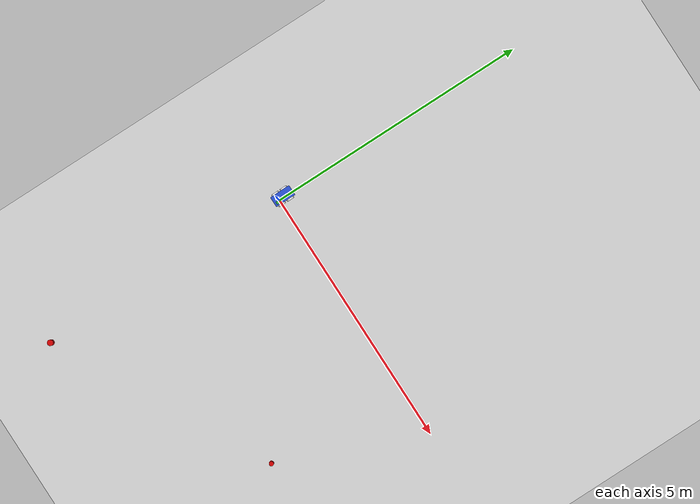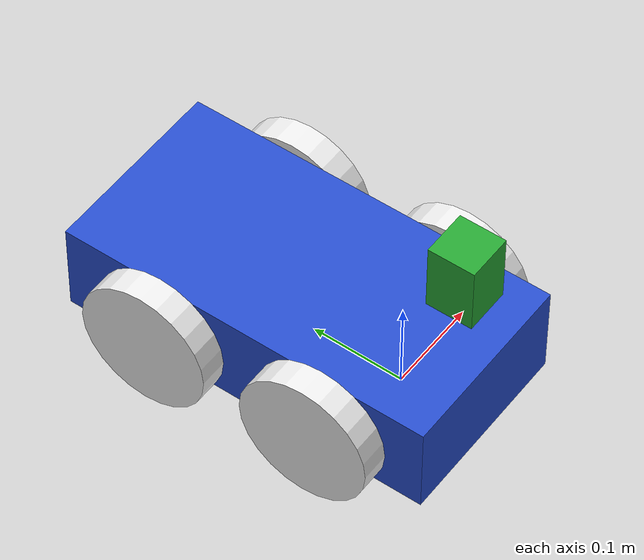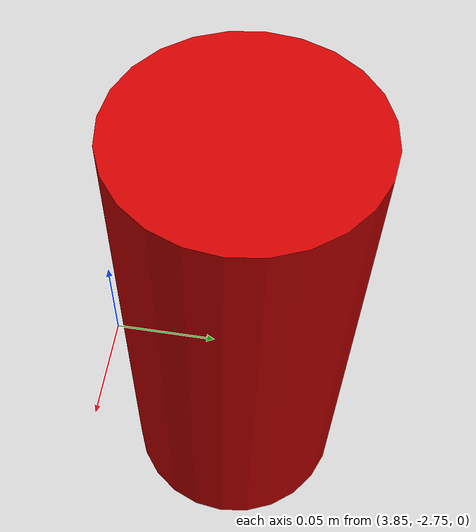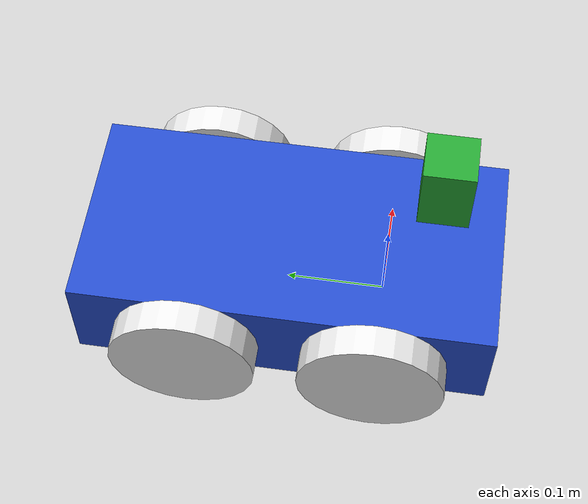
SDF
<sdf version="1.7">
 <world name="default">
  <light name="sun" type="directional">
   <pose>0 0 10 0 -0 0</pose>
   <diffuse>0.8 0.8 0.8 1</diffuse>
   <specular>0.2 0.2 0.2 1</specular>
   <attenuation>
    <range>1000</range>
    <constant>0.9</constant>
    <linear>0.01</linear>
    <quadratic>0.001</quadratic>
   </attenuation>
   <direction>-0.5 0.1 -0.9</direction>
   <spot><inner_angle>0</inner_angle><outer_angle>0</outer_angle><falloff>0</falloff></spot>
  </light>
  <model name="ground_plane">
   <static>1</static>
   <link name="link">
    <collision name="collision">
     <geometry><plane><normal>0 0 1</normal><size>100 100</size></plane></geometry>
     <surface>
      <contact><collide_bitmask>65535</collide_bitmask></contact>
      <friction><ode><mu>100</mu><mu2>50</mu2></ode></friction>
     </surface>
    </collision>
    <visual name="visual">
     <cast_shadows>0</cast_shadows>
     <geometry><plane><normal>0 0 1</normal><size>100 100</size></plane></geometry>
     <material>
      <script><uri>file://media/materials/scripts/gazebo.material</uri><name>Gazebo/Grey</name></script>
     </material>
    </visual>
   </link>
  </model>
  <gravity>0 0 -9.8</gravity>
  <magnetic_field>6e-06 2.3e-05 -4.2e-05</magnetic_field>
  <atmosphere type="adiabatic"/>
  <physics type="ode">
   <max_step_size>0.001</max_step_size>
   <real_time_factor>1</real_time_factor>
   <real_time_update_rate>1000</real_time_update_rate>
  </physics>
  <scene><ambient>0.4 0.4 0.4 1</ambient><background>0.7 0.7 0.7 1</background><shadows>1</shadows></scene>
  <spherical_coordinates>
   <surface_model>EARTH_WGS84</surface_model>
   <latitude_deg>0</latitude_deg>
   <longitude_deg>0</longitude_deg>
   <elevation>0</elevation>
   <heading_deg>0</heading_deg>
  </spherical_coordinates>
  <model name="robot">
   <link name="base_link">
    <inertial>
     <pose>0.000909 -0.002545 0.081545 0 -0 0</pose>
     <mass>22</mass>
     <inertia>
      <ixx>1.31653</ixx>
      <ixy>0.00274909</ixy>
      <ixz>-0.00166909</ixz>
      <iyy>1.36382</iyy>
      <iyz>0.00467345</iyz>
      <izz>1.54868</izz>
     </inertia>
    </inertial>
    <collision name="base_link_collision">
     <pose>0 0 0.08 0 -0 0</pose>
     <geometry><box><size>0.2 0.4 0.1</size></box></geometry>
    </collision>
    <collision name="base_link_fixed_joint_lump__camera_link_collision_1">
     <pose>0.05 -0.14 0.165 0 0 -1.57119</pose>
     <geometry><box><size>0.05 0.05 0.08</size></box></geometry>
    </collision>
    <visual name="base_link_visual">
     <pose>0 0 0.08 0 -0 0</pose>
     <geometry><box><size>0.2 0.4 0.1</size></box></geometry>
     <material>
      <script><name>Gazebo/Blue</name><uri>file://media/materials/scripts/gazebo.material</uri></script>
     </material>
    </visual>
    <visual name="base_link_fixed_joint_lump__camera_link_visual_1">
     <pose>0.05 -0.14 0.165 0 0 -1.57119</pose>
     <geometry><box><size>0.05 0.05 0.08</size></box></geometry>
     <material>
      <script><name>Gazebo/Green</name><uri>file://media/materials/scripts/gazebo.material</uri></script>
     </material>
    </visual>
    <sensor name="camera" type="depth">
     <always_on>1</always_on>
     <visualize>1</visualize>
     <camera>
      <horizontal_fov>1.047</horizontal_fov>
      <image><width>640</width><height>480</height><format>R8G8B8</format></image>
      <depth_camera><output>depths</output></depth_camera>
      <clip><near>0.1</near><far>100</far></clip>
     </camera>
     <plugin name="camera_controller" filename="libgazebo_ros_openni_kinect.so">
      <baseline>0.2</baseline>
      <alwaysOn>1</alwaysOn>
      <updateRate>10.0</updateRate>
      <cameraName>camera</cameraName>
      <frameName>camera_link</frameName>
      <imageTopicName>rgb/image_raw</imageTopicName>
      <depthImageTopicName>depth/image_raw</depthImageTopicName>
      <pointCloudTopicName>depth/points</pointCloudTopicName>
      <cameraInfoTopicName>rgb/camera_info</cameraInfoTopicName>
      <depthImageCameraInfoTopicName>depth/camera_info</depthImageCameraInfoTopicName>
      <pointCloudCutoff>0.4</pointCloudCutoff>
      <hackBaseline>0.07</hackBaseline>
      <distortionK1>0.0</distortionK1>
      <distortionK2>0.0</distortionK2>
      <distortionK3>0.0</distortionK3>
      <distortionT1>0.0</distortionT1>
      <distortionT2>0.0</distortionT2>
      <CxPrime>0.0</CxPrime>
      <Cx>0.0</Cx>
      <Cy>0.0</Cy>
      <focalLength>0.0</focalLength>
      <robotNamespace>/</robotNamespace>
     </plugin>
     <pose>0.05 -0.14 0.165 0 -0 -1.57119</pose>
    </sensor>
   </link>
   <joint name="joint_base_to_left_back_wheel" type="revolute">
    <pose relative_to="base_link">-0.115 -0.09 0.07 3.14159 1.57079 3.14159</pose>
    <parent>base_link</parent>
    <child>left_back_wheel</child>
    <axis>
     <xyz>0 0 1</xyz>
     <limit><lower>-1e+16</lower><upper>1e+16</upper></limit>
     <dynamics><spring_reference>0</spring_reference><spring_stiffness>0</spring_stiffness></dynamics>
    </axis>
   </joint>
   <link name="left_back_wheel">
    <pose relative_to="joint_base_to_left_back_wheel">0 0 0 0 -0 0</pose>
    <inertial>
     <mass>0.54</mass>
     <inertia>
      <ixx>0.000702</ixx>
      <ixy>0</ixy>
      <ixz>0</ixz>
      <iyy>0.000702</iyy>
      <iyz>0</iyz>
      <izz>0.001323</izz>
     </inertia>
    </inertial>
    <collision name="left_back_wheel_collision">
     <geometry><cylinder><length>0.03</length><radius>0.07</radius></cylinder></geometry>
    </collision>
    <visual name="left_back_wheel_visual">
     <geometry><cylinder><length>0.03</length><radius>0.07</radius></cylinder></geometry>
     <material>
      <script><name>Gazebo/White</name><uri>file://media/materials/scripts/gazebo.material</uri></script>
     </material>
    </visual>
   </link>
   <joint name="joint_base_to_left_front_wheel" type="revolute">
    <pose relative_to="base_link">-0.115 0.09 0.07 3.14159 1.57079 3.14159</pose>
    <parent>base_link</parent>
    <child>left_front_wheel</child>
    <axis>
     <xyz>0 0 1</xyz>
     <limit><lower>-1e+16</lower><upper>1e+16</upper></limit>
     <dynamics><spring_reference>0</spring_reference><spring_stiffness>0</spring_stiffness></dynamics>
    </axis>
   </joint>
   <link name="left_front_wheel">
    <pose relative_to="joint_base_to_left_front_wheel">0 0 0 0 -0 0</pose>
    <inertial>
     <mass>0.54</mass>
     <inertia>
      <ixx>0.000702</ixx>
      <ixy>0</ixy>
      <ixz>0</ixz>
      <iyy>0.000702</iyy>
      <iyz>0</iyz>
      <izz>0.001323</izz>
     </inertia>
    </inertial>
    <collision name="left_front_wheel_collision">
     <geometry><cylinder><length>0.03</length><radius>0.07</radius></cylinder></geometry>
    </collision>
    <visual name="left_front_wheel_visual">
     <geometry><cylinder><length>0.03</length><radius>0.07</radius></cylinder></geometry>
     <material>
      <script><name>Gazebo/White</name><uri>file://media/materials/scripts/gazebo.material</uri></script>
     </material>
    </visual>
   </link>
   <joint name="joint_base_to_right_back_wheel" type="revolute">
    <pose relative_to="base_link">0.115 -0.09 0.07 3.14159 1.57079 3.14159</pose>
    <parent>base_link</parent>
    <child>right_back_wheel</child>
    <axis>
     <xyz>0 0 1</xyz>
     <limit><lower>-1e+16</lower><upper>1e+16</upper></limit>
     <dynamics><spring_reference>0</spring_reference><spring_stiffness>0</spring_stiffness></dynamics>
    </axis>
   </joint>
   <link name="right_back_wheel">
    <pose relative_to="joint_base_to_right_back_wheel">0 0 0 0 -0 0</pose>
    <inertial>
     <mass>0.54</mass>
     <inertia>
      <ixx>0.000702</ixx>
      <ixy>0</ixy>
      <ixz>0</ixz>
      <iyy>0.000702</iyy>
      <iyz>0</iyz>
      <izz>0.001323</izz>
     </inertia>
    </inertial>
    <collision name="right_back_wheel_collision">
     <geometry><cylinder><length>0.03</length><radius>0.07</radius></cylinder></geometry>
    </collision>
    <visual name="right_back_wheel_visual">
     <geometry><cylinder><length>0.03</length><radius>0.07</radius></cylinder></geometry>
     <material>
      <script><name>Gazebo/White</name><uri>file://media/materials/scripts/gazebo.material</uri></script>
     </material>
    </visual>
   </link>
   <joint name="joint_base_to_right_front_wheel" type="revolute">
    <pose relative_to="base_link">0.115 0.09 0.07 3.14159 1.57079 3.14159</pose>
    <parent>base_link</parent>
    <child>right_front_wheel</child>
    <axis>
     <xyz>0 0 1</xyz>
     <limit><lower>-1e+16</lower><upper>1e+16</upper></limit>
     <dynamics><spring_reference>0</spring_reference><spring_stiffness>0</spring_stiffness></dynamics>
    </axis>
   </joint>
   <link name="right_front_wheel">
    <pose relative_to="joint_base_to_right_front_wheel">0 0 0 0 -0 0</pose>
    <inertial>
     <mass>0.54</mass>
     <inertia>
      <ixx>0.000702</ixx>
      <ixy>0</ixy>
      <ixz>0</ixz>
      <iyy>0.000702</iyy>
      <iyz>0</iyz>
      <izz>0.001323</izz>
     </inertia>
    </inertial>
    <collision name="right_front_wheel_collision">
     <geometry><cylinder><length>0.03</length><radius>0.07</radius></cylinder></geometry>
    </collision>
    <visual name="right_front_wheel_visual">
     <geometry><cylinder><length>0.03</length><radius>0.07</radius></cylinder></geometry>
     <material>
      <script><name>Gazebo/White</name><uri>file://media/materials/scripts/gazebo.material</uri></script>
     </material>
    </visual>
   </link>
   <plugin name="skid_steer_drive_controller" filename="libgazebo_ros_skid_steer_drive.so">
    <updateRate>100.0</updateRate>
    <leftFrontJoint>joint_base_to_left_front_wheel</leftFrontJoint>
    <rightFrontJoint>joint_base_to_right_front_wheel</rightFrontJoint>
    <leftRearJoint>joint_base_to_left_back_wheel</leftRearJoint>
    <rightRearJoint>joint_base_to_right_back_wheel</rightRearJoint>
    <wheelSeparation>0.2</wheelSeparation>
    <wheelDiameter>0.14</wheelDiameter>
    <robotBaseFrame>base_link</robotBaseFrame>
    <torque>20</torque>
    <commandTopic>cmd_vel</commandTopic>
    <broadcastTF>1</broadcastTF>
    <robotNamespace>/</robotNamespace>
   </plugin>
   <frame name="joint_base_to_camera_link" attached_to="base_link">
    <pose>0.05 -0.14 0.165 0 -0 -1.57119</pose>
   </frame>
   <frame name="camera_link" attached_to="joint_base_to_camera_link"/>
   <pose>-0.026893 0.089755 0 3e-06 -1e-06 0.007657</pose>
  </model>
  <model name="unit_cylinder">
   <link name="link">
    <inertial>
     <mass>1</mass>
     <inertia><ixx>0.145833</ixx><ixy>0</ixy><ixz>0</ixz><iyy>0.145833</iyy><iyz>0</iyz><izz>0.125</izz></inertia>
    </inertial>
    <visual name="visual">
     <geometry><cylinder><radius>0.045</radius><length>0.195</length></cylinder></geometry>
     <material>
      <script><name>Gazebo/Grey</name><uri>file://media/materials/scripts/gazebo.material</uri></script>
      <shader type="pixel"><normal_map>__default__</normal_map></shader>
      <ambient>0.8 0 0 1</ambient>
      <diffuse>0.8 0 0 1</diffuse>
      <specular>0.01 0.01 0.01 1</specular>
      <emissive>0 0 0 1</emissive>
     </material>
    </visual>
    <collision name="collision">
     <geometry><cylinder><radius>5.55556</radius><length>24.0741</length></cylinder></geometry>
     <surface>
      <friction>
       <ode><mu>1</mu><mu2>1</mu2><fdir1>0 0 0</fdir1><slip1>0</slip1><slip2>0</slip2></ode>
       <torsional>
        <coefficient>1</coefficient>
        <patch_radius>0</patch_radius>
        <surface_radius>0</surface_radius>
        <use_patch_radius>1</use_patch_radius>
        <ode><slip>0</slip></ode>
       </torsional>
      </friction>
      <bounce><restitution_coefficient>0</restitution_coefficient><threshold>1e+06</threshold></bounce>
      <contact>
       <collide_without_contact>0</collide_without_contact>
       <collide_without_contact_bitmask>1</collide_without_contact_bitmask>
       <collide_bitmask>1</collide_bitmask>
       <ode>
        <soft_cfm>0</soft_cfm>
        <soft_erp>0.2</soft_erp>
        <kp>1e+13</kp>
        <kd>1</kd>
        <max_vel>0.01</max_vel>
        <min_depth>0</min_depth>
       </ode>
       <bullet>
        <split_impulse>1</split_impulse>
        <split_impulse_penetration_threshold>-0.01</split_impulse_penetration_threshold>
        <soft_cfm>0</soft_cfm>
        <soft_erp>0.2</soft_erp>
        <kp>1e+13</kp>
        <kd>1</kd>
       </bullet>
      </contact>
     </surface>
    </collision>
   </link>
   <static>0</static>
   <pose>0.165768 -3.89074 12.1673 0.020697 -0.01233 0.026305</pose>
  </model>
  <model name="unit_cylinder_0">
   <link name="link">
    <inertial>
     <mass>1</mass>
     <inertia><ixx>0.145833</ixx><ixy>0</ixy><ixz>0</ixz><iyy>0.145833</iyy><iyz>0</iyz><izz>0.125</izz></inertia>
    </inertial>
    <visual name="visual">
     <geometry><cylinder><radius>0.045</radius><length>0.195</length></cylinder></geometry>
     <material>
      <script><name>Gazebo/Grey</name><uri>file://media/materials/scripts/gazebo.material</uri></script>
      <shader type="pixel"><normal_map>__default__</normal_map></shader>
      <ambient>0.8 0 0 1</ambient>
      <diffuse>0.8 0 0 1</diffuse>
      <specular>0.8 0 0 1</specular>
      <emissive>0.8 0 0 1</emissive>
     </material>
    </visual>
    <collision name="collision">
     <geometry><cylinder><radius>0.045</radius><length>0.195</length></cylinder></geometry>
     <surface>
      <friction>
       <ode><mu>1</mu><mu2>1</mu2><fdir1>0 0 0</fdir1><slip1>0</slip1><slip2>0</slip2></ode>
       <torsional>
        <coefficient>1</coefficient>
        <patch_radius>0</patch_radius>
        <surface_radius>0</surface_radius>
        <use_patch_radius>1</use_patch_radius>
        <ode><slip>0</slip></ode>
       </torsional>
      </friction>
      <bounce><restitution_coefficient>0</restitution_coefficient><threshold>1e+06</threshold></bounce>
      <contact>
       <collide_without_contact>0</collide_without_contact>
       <collide_without_contact_bitmask>1</collide_without_contact_bitmask>
       <collide_bitmask>1</collide_bitmask>
       <ode>
        <soft_cfm>0</soft_cfm>
        <soft_erp>0.2</soft_erp>
        <kp>1e+13</kp>
        <kd>1</kd>
        <max_vel>0.01</max_vel>
        <min_depth>0</min_depth>
       </ode>
       <bullet>
        <split_impulse>1</split_impulse>
        <split_impulse_penetration_threshold>-0.01</split_impulse_penetration_threshold>
        <soft_cfm>0</soft_cfm>
        <soft_erp>0.2</soft_erp>
        <kp>1e+13</kp>
        <kd>1</kd>
       </bullet>
      </contact>
     </surface>
    </collision>
   </link>
   <static>0</static>
   <pose>3.89353 -2.68257 0.09748 -1e-06 -2e-06 0.007148</pose>
  </model>
 </world>
</sdf>
